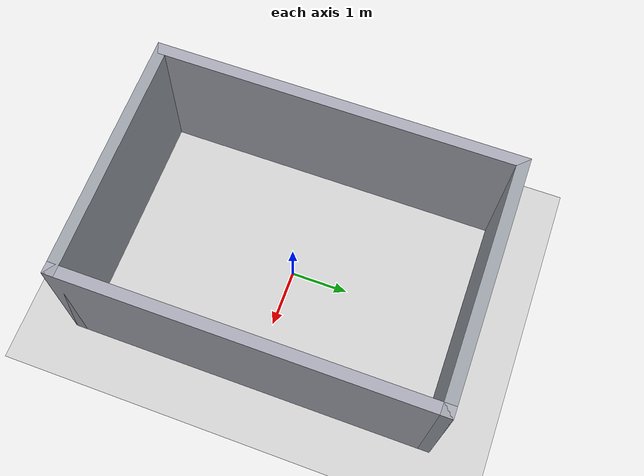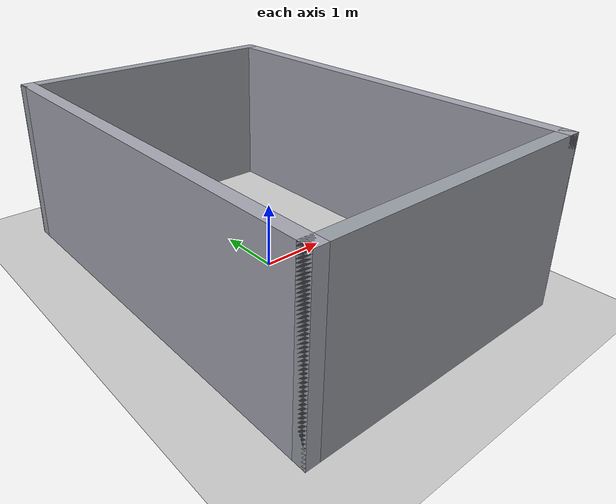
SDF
<sdf version="1.6">
 <world name="warehouse_semantic_models">
  <plugin filename="gz-sim-physics-system" name="gz::sim::systems::Physics"/>
  <plugin filename="gz-sim-user-commands-system" name="gz::sim::systems::UserCommands"/>
  <plugin filename="gz-sim-scene-broadcaster-system" name="gz::sim::systems::SceneBroadcaster"/>
  <plugin filename="gz-sim-sensors-system" name="gz::sim::systems::Sensors">
   <render_engine>ogre2</render_engine>
  </plugin>
  <plugin filename="gz-sim-imu-system" name="gz::sim::systems::Imu"/>
  <light name="sun" type="directional">
   <cast_shadows>false</cast_shadows>
   <pose>0 0 10 0 0 0</pose>
   <diffuse>0.8 0.8 0.8 1</diffuse>
   <specular>0.2 0.2 0.2 1</specular>
   <attenuation>
    <range>1000</range>
    <constant>0.9</constant>
    <linear>0.01</linear>
    <quadratic>0.001</quadratic>
   </attenuation>
   <direction>-0.5 0.1 -0.9</direction>
  </light>
  <model name="ground_plane">
   <static>true</static>
   <link name="link">
    <collision name="collision">
     <geometry><plane><normal>0 0 1</normal><size>100 100</size></plane></geometry>
    </collision>
    <visual name="visual">
     <geometry><plane><normal>0 0 1</normal><size>100 100</size></plane></geometry>
     <material>
      <ambient>0.8 0.8 0.8 1</ambient>
      <diffuse>0.8 0.8 0.8 1</diffuse>
      <specular>0.8 0.8 0.8 1</specular>
     </material>
    </visual>
   </link>
  </model>
  <physics name="default_physics" type="dart">
   <max_step_size>0.001</max_step_size>
   <real_time_factor>1.0</real_time_factor>
  </physics>
  <scene><ambient>0.4 0.4 0.4 1</ambient><background>0.7 0.75 0.8 1</background></scene>
  <model name="wall_east">
   <static>true</static>
   <pose>2.1 0 1.25 0 0 0</pose>
   <link name="link">
    <collision name="collision"><geometry><box><size>0.2 6.4 2.5</size></box></geometry></collision>
    <visual name="visual">
     <geometry><box><size>0.2 6.4 2.5</size></box></geometry>
     <material><ambient>0.55 0.55 0.58 1</ambient><diffuse>0.65 0.65 0.7 1</diffuse></material>
    </visual>
   </link>
  </model>
  <model name="wall_west">
   <static>true</static>
   <pose>-2.1 0 1.25 0 0 0</pose>
   <link name="link">
    <collision name="collision"><geometry><box><size>0.2 6.4 2.5</size></box></geometry></collision>
    <visual name="visual">
     <geometry><box><size>0.2 6.4 2.5</size></box></geometry>
     <material><ambient>0.55 0.55 0.58 1</ambient><diffuse>0.65 0.65 0.7 1</diffuse></material>
    </visual>
   </link>
  </model>
  <model name="wall_north">
   <static>true</static>
   <pose>0 3.1 1.25 0 0 0</pose>
   <link name="link">
    <collision name="collision"><geometry><box><size>4.4 0.2 2.5</size></box></geometry></collision>
    <visual name="visual">
     <geometry><box><size>4.4 0.2 2.5</size></box></geometry>
     <material><ambient>0.5 0.52 0.55 1</ambient><diffuse>0.6 0.62 0.65 1</diffuse></material>
    </visual>
   </link>
  </model>
  <model name="wall_south">
   <static>true</static>
   <pose>0 -3.1 1.25 0 0 0</pose>
   <link name="link">
    <collision name="collision"><geometry><box><size>4.4 0.2 2.5</size></box></geometry></collision>
    <visual name="visual">
     <geometry><box><size>4.4 0.2 2.5</size></box></geometry>
     <material><ambient>0.5 0.52 0.55 1</ambient><diffuse>0.6 0.62 0.65 1</diffuse></material>
    </visual>
   </link>
  </model>
 </world>
</sdf>
